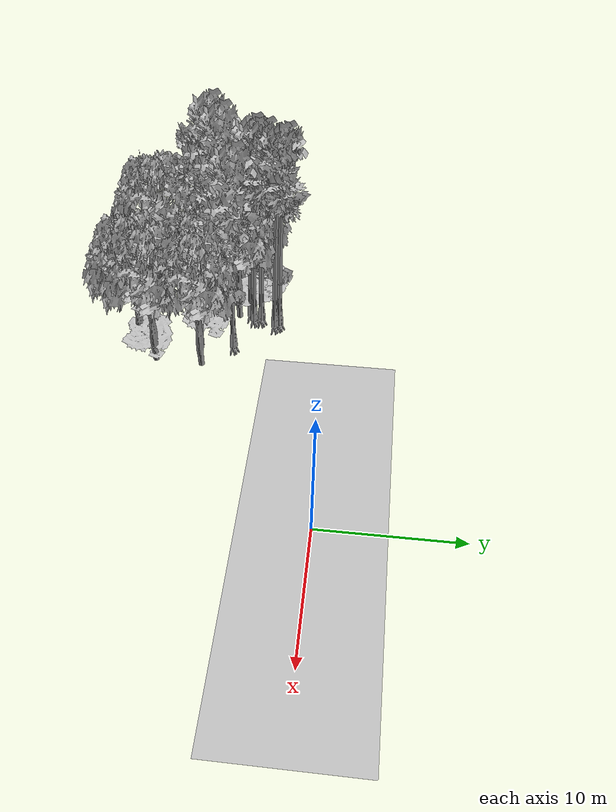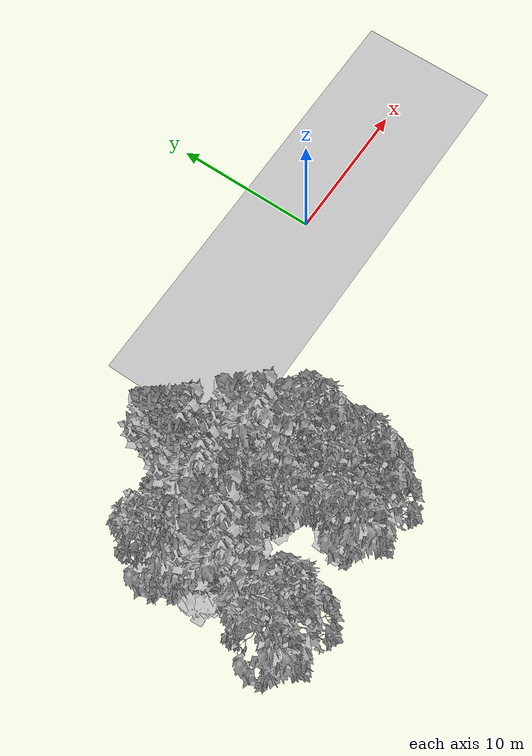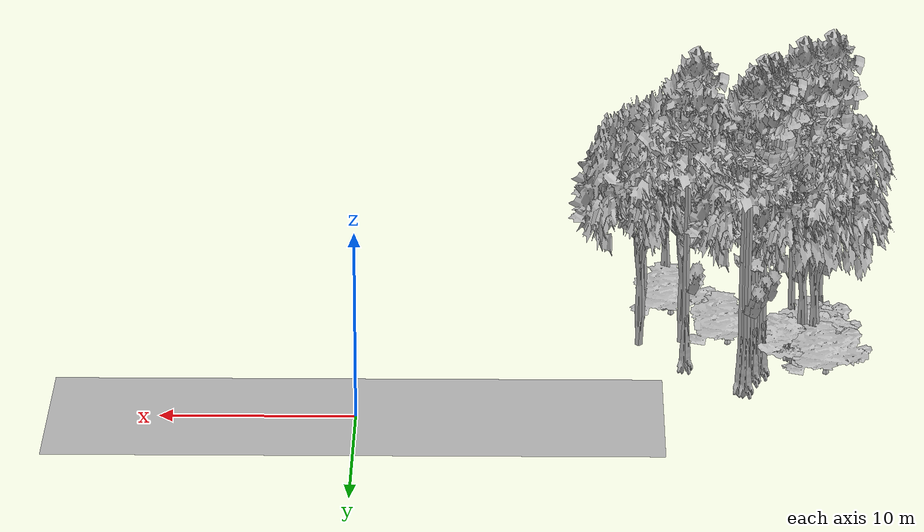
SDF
<sdf version="1.7">
 <world name="default">
  <model name="ground_plane">
   <static>1</static>
   <link name="link">
    <collision name="collision">
     <pose>-50 0 0 0 -0 0</pose>
     <geometry><plane><normal>0 0 1</normal><size>100 100</size></plane></geometry>
     <surface><contact><ode><min_depth>0.01</min_depth><max_vel>0</max_vel></ode></contact></surface>
    </collision>
    <visual name="grass">
     <cast_shadows>0</cast_shadows>
     <geometry>
      <mesh>
       <scale>0.5814285714285714 0.18142857142857144 0.1</scale>
       <uri>file://grass_plane/meshes/grass_plane.dae</uri>
      </mesh>
     </geometry>
    </visual>
   </link>
  </model>
  <model name="Tree 6">
   <static>1</static>
   <pose>-14.847587677390472 -13.198591773036949 0 1.57079 -0 0</pose>
   <link name="link">
    <collision name="collision">
     <geometry><mesh><scale>3.5 5 3.5</scale><uri>model://tree_2/meshes/tree_2.obj</uri></mesh></geometry>
    </collision>
    <visual name="visual">
     <geometry><mesh><scale>3.5 5 3.5</scale><uri>model://tree_2/meshes/tree_2.obj</uri></mesh></geometry>
    </visual>
   </link>
  </model>
  <model name="Tree 12">
   <static>1</static>
   <pose>-19.75647493247449 -4.691721239419238 0 1.57079 -0 0</pose>
   <link name="link">
    <collision name="collision">
     <geometry><mesh><scale>3.5 5 3.5</scale><uri>model://tree_9/meshes/tree_9.obj</uri></mesh></geometry>
    </collision>
    <visual name="visual">
     <geometry><mesh><scale>3.5 5 3.5</scale><uri>model://tree_9/meshes/tree_9.obj</uri></mesh></geometry>
    </visual>
   </link>
  </model>
  <model name="Tree 53">
   <static>1</static>
   <pose>-16.94764308115119 -7.556064077703304 0 1.57079 -0 0</pose>
   <link name="link">
    <collision name="collision">
     <geometry><mesh><scale>3.5 5 3.5</scale><uri>model://tree_9/meshes/tree_9.obj</uri></mesh></geometry>
    </collision>
    <visual name="visual">
     <geometry><mesh><scale>3.5 5 3.5</scale><uri>model://tree_9/meshes/tree_9.obj</uri></mesh></geometry>
    </visual>
   </link>
  </model>
  <model name="Tree 93">
   <static>1</static>
   <pose>-23.841688185969225 -9.48059013141933 0 1.57079 -0 0</pose>
   <link name="link">
    <collision name="collision">
     <geometry><mesh><scale>3 2 3</scale><uri>model://tree_3/meshes/tree_3.obj</uri></mesh></geometry>
    </collision>
    <visual name="visual">
     <geometry><mesh><scale>3 2 3</scale><uri>model://tree_3/meshes/tree_3.obj</uri></mesh></geometry>
    </visual>
   </link>
  </model>
  <model name="Tree 137">
   <static>1</static>
   <pose>-20.013759562971323 -4.360135225142942 0 1.57079 -0 0</pose>
   <link name="link">
    <collision name="collision">
     <geometry><mesh><scale>3.5 5 3.5</scale><uri>model://tree_9/meshes/tree_9.obj</uri></mesh></geometry>
    </collision>
    <visual name="visual">
     <geometry><mesh><scale>3.5 5 3.5</scale><uri>model://tree_9/meshes/tree_9.obj</uri></mesh></geometry>
    </visual>
   </link>
  </model>
  <model name="Tree 153">
   <static>1</static>
   <pose>-20.524052593621892 -8.793735433744203 0 1.57079 -0 0</pose>
   <link name="link">
    <collision name="collision">
     <geometry><mesh><scale>3.5 5 3.5</scale><uri>model://tree_2/meshes/tree_2.obj</uri></mesh></geometry>
    </collision>
    <visual name="visual">
     <geometry><mesh><scale>3.5 5 3.5</scale><uri>model://tree_2/meshes/tree_2.obj</uri></mesh></geometry>
    </visual>
   </link>
  </model>
  <model name="Tree 163">
   <static>1</static>
   <pose>-24.032217839054653 -10.265445098127007 0 1.57079 -0 0</pose>
   <link name="link">
    <collision name="collision">
     <geometry><mesh><scale>3.5 5 3.5</scale><uri>model://tree_9/meshes/tree_9.obj</uri></mesh></geometry>
    </collision>
    <visual name="visual">
     <geometry><mesh><scale>3.5 5 3.5</scale><uri>model://tree_9/meshes/tree_9.obj</uri></mesh></geometry>
    </visual>
   </link>
  </model>
  <model name="Tree 188">
   <static>1</static>
   <pose>-20.62131779896953 -7.610081966524982 0 1.57079 -0 0</pose>
   <link name="link">
    <collision name="collision">
     <geometry><mesh><scale>3.5 5 3.5</scale><uri>model://tree_2/meshes/tree_2.obj</uri></mesh></geometry>
    </collision>
    <visual name="visual">
     <geometry><mesh><scale>3.5 5 3.5</scale><uri>model://tree_2/meshes/tree_2.obj</uri></mesh></geometry>
    </visual>
   </link>
  </model>
  <model name="Tree 239">
   <static>1</static>
   <pose>-23.08433810288824 -7.726424999169449 0 1.57079 -0 0</pose>
   <link name="link">
    <collision name="collision">
     <geometry><mesh><scale>3.5 5 3.5</scale><uri>model://tree_2/meshes/tree_2.obj</uri></mesh></geometry>
    </collision>
    <visual name="visual">
     <geometry><mesh><scale>3.5 5 3.5</scale><uri>model://tree_2/meshes/tree_2.obj</uri></mesh></geometry>
    </visual>
   </link>
  </model>
  <model name="Tree 252">
   <static>1</static>
   <pose>-16.90055544454846 -10.084382710550177 0 1.57079 -0 0</pose>
   <link name="link">
    <collision name="collision">
     <geometry><mesh><scale>3.5 5 3.5</scale><uri>model://tree_2/meshes/tree_2.obj</uri></mesh></geometry>
    </collision>
    <visual name="visual">
     <geometry><mesh><scale>3.5 5 3.5</scale><uri>model://tree_2/meshes/tree_2.obj</uri></mesh></geometry>
    </visual>
   </link>
  </model>
  <model name="Tree 267">
   <static>1</static>
   <pose>-24.449073566783937 -8.527773181222571 0 1.57079 -0 0</pose>
   <link name="link">
    <collision name="collision">
     <geometry><mesh><scale>4 2.5 4</scale><uri>model://tree_1/meshes/tree_1.obj</uri></mesh></geometry>
    </collision>
    <visual name="visual">
     <geometry><mesh><scale>4 2.5 4</scale><uri>model://tree_1/meshes/tree_1.obj</uri></mesh></geometry>
    </visual>
   </link>
  </model>
  <model name="Tree 290">
   <static>1</static>
   <pose>-24.222883475785068 -6.099735742439194 0 1.57079 -0 0</pose>
   <link name="link">
    <collision name="collision">
     <geometry><mesh><scale>3 2 3</scale><uri>model://tree_3/meshes/tree_3.obj</uri></mesh></geometry>
    </collision>
    <visual name="visual">
     <geometry><mesh><scale>3 2 3</scale><uri>model://tree_3/meshes/tree_3.obj</uri></mesh></geometry>
    </visual>
   </link>
  </model>
  <model name="Tree 305">
   <static>1</static>
   <pose>-16.34917805792751 -14.105784338429427 0 1.57079 -0 0</pose>
   <link name="link">
    <collision name="collision">
     <geometry><mesh><scale>3 2 3</scale><uri>model://tree_3/meshes/tree_3.obj</uri></mesh></geometry>
    </collision>
    <visual name="visual">
     <geometry><mesh><scale>3 2 3</scale><uri>model://tree_3/meshes/tree_3.obj</uri></mesh></geometry>
    </visual>
   </link>
  </model>
  <model name="Tree 313">
   <static>1</static>
   <pose>-23.65546893023073 -6.775707953263993 0 1.57079 -0 0</pose>
   <link name="link">
    <collision name="collision">
     <geometry><mesh><scale>3.5 5 3.5</scale><uri>model://tree_2/meshes/tree_2.obj</uri></mesh></geometry>
    </collision>
    <visual name="visual">
     <geometry><mesh><scale>3.5 5 3.5</scale><uri>model://tree_2/meshes/tree_2.obj</uri></mesh></geometry>
    </visual>
   </link>
  </model>
  <model name="Tree 315">
   <static>1</static>
   <pose>-22.527418978964462 -9.22268898182508 0 1.57079 -0 0</pose>
   <link name="link">
    <collision name="collision">
     <geometry><mesh><scale>3.5 5 3.5</scale><uri>model://tree_9/meshes/tree_9.obj</uri></mesh></geometry>
    </collision>
    <visual name="visual">
     <geometry><mesh><scale>3.5 5 3.5</scale><uri>model://tree_9/meshes/tree_9.obj</uri></mesh></geometry>
    </visual>
   </link>
  </model>
  <model name="Tree 319">
   <static>1</static>
   <pose>-16.09419868362413 -14.548518192444337 0 1.57079 -0 0</pose>
   <link name="link">
    <collision name="collision">
     <geometry><mesh><scale>3.5 5 3.5</scale><uri>model://tree_2/meshes/tree_2.obj</uri></mesh></geometry>
    </collision>
    <visual name="visual">
     <geometry><mesh><scale>3.5 5 3.5</scale><uri>model://tree_2/meshes/tree_2.obj</uri></mesh></geometry>
    </visual>
   </link>
  </model>
  <model name="Tree 340">
   <static>1</static>
   <pose>-14.669885807894623 -9.682132669710445 0 1.57079 -0 0</pose>
   <link name="link">
    <collision name="collision">
     <geometry><mesh><scale>3.5 5 3.5</scale><uri>model://tree_2/meshes/tree_2.obj</uri></mesh></geometry>
    </collision>
    <visual name="visual">
     <geometry><mesh><scale>3.5 5 3.5</scale><uri>model://tree_2/meshes/tree_2.obj</uri></mesh></geometry>
    </visual>
   </link>
  </model>
  <model name="Tree 344">
   <static>1</static>
   <pose>-24.23327938289983 -14.494509183424274 0 1.57079 -0 0</pose>
   <link name="link">
    <collision name="collision">
     <geometry><mesh><scale>3.5 5 3.5</scale><uri>model://tree_2/meshes/tree_2.obj</uri></mesh></geometry>
    </collision>
    <visual name="visual">
     <geometry><mesh><scale>3.5 5 3.5</scale><uri>model://tree_2/meshes/tree_2.obj</uri></mesh></geometry>
    </visual>
   </link>
  </model>
  <model name="Tree 357">
   <static>1</static>
   <pose>-20.36543897430207 -6.4127428175989944 0 1.57079 -0 0</pose>
   <link name="link">
    <collision name="collision">
     <geometry><mesh><scale>3.5 5 3.5</scale><uri>model://tree_9/meshes/tree_9.obj</uri></mesh></geometry>
    </collision>
    <visual name="visual">
     <geometry><mesh><scale>3.5 5 3.5</scale><uri>model://tree_9/meshes/tree_9.obj</uri></mesh></geometry>
    </visual>
   </link>
  </model>
  <model name="Tree 362">
   <static>1</static>
   <pose>-19.24914037057351 -10.041848480803036 0 1.57079 -0 0</pose>
   <link name="link">
    <collision name="collision">
     <geometry><mesh><scale>3 2 3</scale><uri>model://tree_3/meshes/tree_3.obj</uri></mesh></geometry>
    </collision>
    <visual name="visual">
     <geometry><mesh><scale>3 2 3</scale><uri>model://tree_3/meshes/tree_3.obj</uri></mesh></geometry>
    </visual>
   </link>
  </model>
  <model name="Tree 418">
   <static>1</static>
   <pose>-20.436364231295563 -5.830136261881259 0 1.57079 -0 0</pose>
   <link name="link">
    <collision name="collision">
     <geometry><mesh><scale>3.5 5 3.5</scale><uri>model://tree_9/meshes/tree_9.obj</uri></mesh></geometry>
    </collision>
    <visual name="visual">
     <geometry><mesh><scale>3.5 5 3.5</scale><uri>model://tree_9/meshes/tree_9.obj</uri></mesh></geometry>
    </visual>
   </link>
  </model>
  <model name="Tree 485">
   <static>1</static>
   <pose>-22.443908148379084 -6.90108675151988 0 1.57079 -0 0</pose>
   <link name="link">
    <collision name="collision">
     <geometry><mesh><scale>4 2.5 4</scale><uri>model://tree_1/meshes/tree_1.obj</uri></mesh></geometry>
    </collision>
    <visual name="visual">
     <geometry><mesh><scale>4 2.5 4</scale><uri>model://tree_1/meshes/tree_1.obj</uri></mesh></geometry>
    </visual>
   </link>
  </model>
  <model name="Tree 502">
   <static>1</static>
   <pose>-20.92558493643066 -6.740107708744114 0 1.57079 -0 0</pose>
   <link name="link">
    <collision name="collision">
     <geometry><mesh><scale>3.5 5 3.5</scale><uri>model://tree_9/meshes/tree_9.obj</uri></mesh></geometry>
    </collision>
    <visual name="visual">
     <geometry><mesh><scale>3.5 5 3.5</scale><uri>model://tree_9/meshes/tree_9.obj</uri></mesh></geometry>
    </visual>
   </link>
  </model>
 </world>
</sdf>
